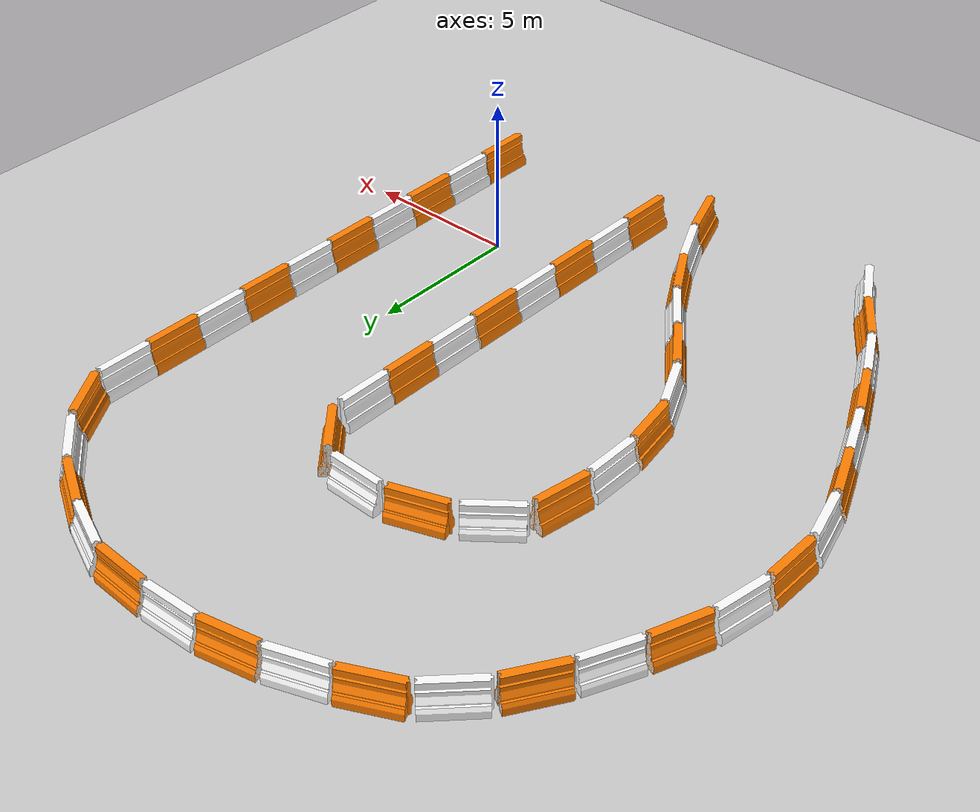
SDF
<sdf version="1.4">
 <world name="default">
  <model name="ground_plane">
   <static>1</static>
   <link name="link">
    <collision name="collision">
     <geometry><plane><normal>0 0 1</normal><size>100 100</size></plane></geometry>
     <surface><friction><ode><mu>100</mu><mu2>50</mu2></ode></friction></surface>
    </collision>
    <visual name="visual">
     <cast_shadows>0</cast_shadows>
     <geometry><plane><normal>0 0 1</normal><size>100 100</size></plane></geometry>
     <material>
      <script><uri>file://media/materials/scripts/gazebo.material</uri><name>Gazebo/Grey</name></script>
     </material>
    </visual>
    <velocity_decay><linear>0</linear><angular>0</angular></velocity_decay>
   </link>
  </model>
  <model name="drc_practice_organge_jersey_barrier">
   <static>1</static>
   <link name="link">
    <visual name="visual">
     <geometry>
      <mesh><uri>model://drc_practice_orange_jersey_barrier/meshes/jersey_barrier.dae</uri></mesh>
     </geometry>
    </visual>
    <collision name="collision">
     <geometry>
      <mesh><uri>model://drc_practice_orange_jersey_barrier/meshes/jersey_barrier.dae</uri></mesh>
     </geometry>
    </collision>
    <velocity_decay><linear>0</linear><angular>0</angular></velocity_decay>
   </link>
   <pose>-3 0 0 0 -0 0</pose>
  </model>
  <model name="drc_practice_white_jersey_barrier">
   <static>1</static>
   <link name="link">
    <visual name="visual">
     <geometry>
      <mesh><uri>model://drc_practice_white_jersey_barrier/meshes/jersey_barrier.dae</uri></mesh>
     </geometry>
    </visual>
    <collision name="collision">
     <geometry>
      <mesh><uri>model://drc_practice_white_jersey_barrier/meshes/jersey_barrier.dae</uri></mesh>
     </geometry>
    </collision>
    <velocity_decay><linear>0</linear><angular>0</angular></velocity_decay>
   </link>
   <pose>-3.00636 -1.77879 0 0 -0 0</pose>
  </model>
  <model name="drc_practice_organge_jersey_barrier_0">
   <static>1</static>
   <link name="link">
    <visual name="visual">
     <geometry>
      <mesh><uri>model://drc_practice_orange_jersey_barrier/meshes/jersey_barrier.dae</uri></mesh>
     </geometry>
    </visual>
    <collision name="collision">
     <geometry>
      <mesh><uri>model://drc_practice_orange_jersey_barrier/meshes/jersey_barrier.dae</uri></mesh>
     </geometry>
    </collision>
    <velocity_decay><linear>0</linear><angular>0</angular></velocity_decay>
   </link>
   <pose>3 0 0 0 -0 0</pose>
  </model>
  <model name="drc_practice_white_jersey_barrier_0">
   <static>1</static>
   <link name="link">
    <visual name="visual">
     <geometry>
      <mesh><uri>model://drc_practice_white_jersey_barrier/meshes/jersey_barrier.dae</uri></mesh>
     </geometry>
    </visual>
    <collision name="collision">
     <geometry>
      <mesh><uri>model://drc_practice_white_jersey_barrier/meshes/jersey_barrier.dae</uri></mesh>
     </geometry>
    </collision>
    <velocity_decay><linear>0</linear><angular>0</angular></velocity_decay>
   </link>
   <pose>2.99298 -1.79417 0 0 -0 0</pose>
  </model>
  <model name="drc_practice_organge_jersey_barrier_1">
   <static>1</static>
   <link name="link">
    <visual name="visual">
     <geometry>
      <mesh><uri>model://drc_practice_orange_jersey_barrier/meshes/jersey_barrier.dae</uri></mesh>
     </geometry>
    </visual>
    <collision name="collision">
     <geometry>
      <mesh><uri>model://drc_practice_orange_jersey_barrier/meshes/jersey_barrier.dae</uri></mesh>
     </geometry>
    </collision>
    <velocity_decay><linear>0</linear><angular>0</angular></velocity_decay>
   </link>
   <pose>3 -3.58116 0 0 -0 0</pose>
  </model>
  <model name="drc_practice_white_jersey_barrier_1">
   <static>1</static>
   <link name="link">
    <visual name="visual">
     <geometry>
      <mesh><uri>model://drc_practice_white_jersey_barrier/meshes/jersey_barrier.dae</uri></mesh>
     </geometry>
    </visual>
    <collision name="collision">
     <geometry>
      <mesh><uri>model://drc_practice_white_jersey_barrier/meshes/jersey_barrier.dae</uri></mesh>
     </geometry>
    </collision>
    <velocity_decay><linear>0</linear><angular>0</angular></velocity_decay>
   </link>
   <pose>2.99532 1.76518 0 0 -0 0</pose>
  </model>
  <model name="drc_practice_organge_jersey_barrier_2">
   <static>1</static>
   <link name="link">
    <visual name="visual">
     <geometry>
      <mesh><uri>model://drc_practice_orange_jersey_barrier/meshes/jersey_barrier.dae</uri></mesh>
     </geometry>
    </visual>
    <collision name="collision">
     <geometry>
      <mesh><uri>model://drc_practice_orange_jersey_barrier/meshes/jersey_barrier.dae</uri></mesh>
     </geometry>
    </collision>
    <velocity_decay><linear>0</linear><angular>0</angular></velocity_decay>
   </link>
   <pose>3.00321 3.55017 0 0 -0 0</pose>
  </model>
  <model name="drc_practice_white_jersey_barrier_2">
   <static>1</static>
   <link name="link">
    <visual name="visual">
     <geometry>
      <mesh><uri>model://drc_practice_white_jersey_barrier/meshes/jersey_barrier.dae</uri></mesh>
     </geometry>
    </visual>
    <collision name="collision">
     <geometry>
      <mesh><uri>model://drc_practice_white_jersey_barrier/meshes/jersey_barrier.dae</uri></mesh>
     </geometry>
    </collision>
    <velocity_decay><linear>0</linear><angular>0</angular></velocity_decay>
   </link>
   <pose>3.00517 5.32833 0 0 -0 0</pose>
  </model>
  <model name="drc_practice_organge_jersey_barrier_3">
   <static>1</static>
   <link name="link">
    <visual name="visual">
     <geometry>
      <mesh><uri>model://drc_practice_orange_jersey_barrier/meshes/jersey_barrier.dae</uri></mesh>
     </geometry>
    </visual>
    <collision name="collision">
     <geometry>
      <mesh><uri>model://drc_practice_orange_jersey_barrier/meshes/jersey_barrier.dae</uri></mesh>
     </geometry>
    </collision>
    <velocity_decay><linear>0</linear><angular>0</angular></velocity_decay>
   </link>
   <pose>3.01972 7.11826 0 0 -0 0</pose>
  </model>
  <model name="drc_practice_white_jersey_barrier_3">
   <static>1</static>
   <link name="link">
    <visual name="visual">
     <geometry>
      <mesh><uri>model://drc_practice_white_jersey_barrier/meshes/jersey_barrier.dae</uri></mesh>
     </geometry>
    </visual>
    <collision name="collision">
     <geometry>
      <mesh><uri>model://drc_practice_white_jersey_barrier/meshes/jersey_barrier.dae</uri></mesh>
     </geometry>
    </collision>
    <velocity_decay><linear>0</linear><angular>0</angular></velocity_decay>
   </link>
   <pose>3.03592 8.91113 0 0 -0 0</pose>
  </model>
  <model name="drc_practice_organge_jersey_barrier_4">
   <static>1</static>
   <link name="link">
    <visual name="visual">
     <geometry>
      <mesh><uri>model://drc_practice_orange_jersey_barrier/meshes/jersey_barrier.dae</uri></mesh>
     </geometry>
    </visual>
    <collision name="collision">
     <geometry>
      <mesh><uri>model://drc_practice_orange_jersey_barrier/meshes/jersey_barrier.dae</uri></mesh>
     </geometry>
    </collision>
    <velocity_decay><linear>0</linear><angular>0</angular></velocity_decay>
   </link>
   <pose>3.04313 10.6845 0 0 -0 0</pose>
  </model>
  <model name="drc_practice_white_jersey_barrier_4">
   <static>1</static>
   <link name="link">
    <visual name="visual">
     <geometry>
      <mesh><uri>model://drc_practice_white_jersey_barrier/meshes/jersey_barrier.dae</uri></mesh>
     </geometry>
    </visual>
    <collision name="collision">
     <geometry>
      <mesh><uri>model://drc_practice_white_jersey_barrier/meshes/jersey_barrier.dae</uri></mesh>
     </geometry>
    </collision>
    <velocity_decay><linear>0</linear><angular>0</angular></velocity_decay>
   </link>
   <pose>3.05799 12.4512 0 0 -0 0</pose>
  </model>
  <model name="drc_practice_organge_jersey_barrier_5">
   <static>1</static>
   <link name="link">
    <visual name="visual">
     <geometry>
      <mesh><uri>model://drc_practice_orange_jersey_barrier/meshes/jersey_barrier.dae</uri></mesh>
     </geometry>
    </visual>
    <collision name="collision">
     <geometry>
      <mesh><uri>model://drc_practice_orange_jersey_barrier/meshes/jersey_barrier.dae</uri></mesh>
     </geometry>
    </collision>
    <velocity_decay><linear>0</linear><angular>0</angular></velocity_decay>
   </link>
   <pose>2.56633 14.2109 0 0 -0 0.558037</pose>
  </model>
  <model name="drc_practice_white_jersey_barrier_5">
   <static>1</static>
   <link name="link">
    <visual name="visual">
     <geometry>
      <mesh><uri>model://drc_practice_white_jersey_barrier/meshes/jersey_barrier.dae</uri></mesh>
     </geometry>
    </visual>
    <collision name="collision">
     <geometry>
      <mesh><uri>model://drc_practice_white_jersey_barrier/meshes/jersey_barrier.dae</uri></mesh>
     </geometry>
    </collision>
    <velocity_decay><linear>0</linear><angular>0</angular></velocity_decay>
   </link>
   <pose>1.35576 15.6634 0 0 -0 0.849517</pose>
  </model>
  <model name="drc_practice_organge_jersey_barrier_6">
   <static>1</static>
   <link name="link">
    <visual name="visual">
     <geometry>
      <mesh><uri>model://drc_practice_orange_jersey_barrier/meshes/jersey_barrier.dae</uri></mesh>
     </geometry>
    </visual>
    <collision name="collision">
     <geometry>
      <mesh><uri>model://drc_practice_orange_jersey_barrier/meshes/jersey_barrier.dae</uri></mesh>
     </geometry>
    </collision>
    <velocity_decay><linear>0</linear><angular>0</angular></velocity_decay>
   </link>
   <pose>-2.9865 3.54993 0 0 -0 0</pose>
  </model>
  <model name="drc_practice_white_jersey_barrier_6">
   <static>1</static>
   <link name="link">
    <visual name="visual">
     <geometry>
      <mesh><uri>model://drc_practice_white_jersey_barrier/meshes/jersey_barrier.dae</uri></mesh>
     </geometry>
    </visual>
    <collision name="collision">
     <geometry>
      <mesh><uri>model://drc_practice_white_jersey_barrier/meshes/jersey_barrier.dae</uri></mesh>
     </geometry>
    </collision>
    <velocity_decay><linear>0</linear><angular>0</angular></velocity_decay>
   </link>
   <pose>-2.99585 1.76821 0 0 -0 0</pose>
  </model>
  <model name="drc_practice_white_jersey_barrier_7">
   <static>1</static>
   <link name="link">
    <visual name="visual">
     <geometry>
      <mesh><uri>model://drc_practice_white_jersey_barrier/meshes/jersey_barrier.dae</uri></mesh>
     </geometry>
    </visual>
    <collision name="collision">
     <geometry>
      <mesh><uri>model://drc_practice_white_jersey_barrier/meshes/jersey_barrier.dae</uri></mesh>
     </geometry>
    </collision>
    <velocity_decay><linear>0</linear><angular>0</angular></velocity_decay>
   </link>
   <pose>-2.9686 5.35953 0 0 -0 0</pose>
  </model>
  <model name="drc_practice_organge_jersey_barrier_7">
   <static>1</static>
   <link name="link">
    <visual name="visual">
     <geometry>
      <mesh><uri>model://drc_practice_orange_jersey_barrier/meshes/jersey_barrier.dae</uri></mesh>
     </geometry>
    </visual>
    <collision name="collision">
     <geometry>
      <mesh><uri>model://drc_practice_orange_jersey_barrier/meshes/jersey_barrier.dae</uri></mesh>
     </geometry>
    </collision>
    <velocity_decay><linear>0</linear><angular>0</angular></velocity_decay>
   </link>
   <pose>-2.96717 7.14327 0 0 -0 0</pose>
  </model>
  <model name="drc_practice_white_jersey_barrier_8">
   <static>1</static>
   <link name="link">
    <visual name="visual">
     <geometry>
      <mesh><uri>model://drc_practice_white_jersey_barrier/meshes/jersey_barrier.dae</uri></mesh>
     </geometry>
    </visual>
    <collision name="collision">
     <geometry>
      <mesh><uri>model://drc_practice_white_jersey_barrier/meshes/jersey_barrier.dae</uri></mesh>
     </geometry>
    </collision>
    <velocity_decay><linear>0</linear><angular>0</angular></velocity_decay>
   </link>
   <pose>-2.94955 8.92506 0 0 -0 0</pose>
  </model>
  <model name="drc_practice_organge_jersey_barrier_8">
   <static>1</static>
   <link name="link">
    <visual name="visual">
     <geometry>
      <mesh><uri>model://drc_practice_orange_jersey_barrier/meshes/jersey_barrier.dae</uri></mesh>
     </geometry>
    </visual>
    <collision name="collision">
     <geometry>
      <mesh><uri>model://drc_practice_orange_jersey_barrier/meshes/jersey_barrier.dae</uri></mesh>
     </geometry>
    </collision>
    <velocity_decay><linear>0</linear><angular>0</angular></velocity_decay>
   </link>
   <pose>-3.53823 10.7657 0 0 -0 0.724496</pose>
  </model>
  <model name="drc_practice_white_jersey_barrier_9">
   <static>1</static>
   <link name="link">
    <visual name="visual">
     <geometry>
      <mesh><uri>model://drc_practice_white_jersey_barrier/meshes/jersey_barrier.dae</uri></mesh>
     </geometry>
    </visual>
    <collision name="collision">
     <geometry>
      <mesh><uri>model://drc_practice_white_jersey_barrier/meshes/jersey_barrier.dae</uri></mesh>
     </geometry>
    </collision>
    <velocity_decay><linear>0</linear><angular>0</angular></velocity_decay>
   </link>
   <pose>-5.30266 11.5274 0 0 -0 1.55462</pose>
  </model>
  <model name="drc_practice_organge_jersey_barrier_10">
   <static>1</static>
   <link name="link">
    <visual name="visual">
     <geometry>
      <mesh><uri>model://drc_practice_orange_jersey_barrier/meshes/jersey_barrier.dae</uri></mesh>
     </geometry>
    </visual>
    <collision name="collision">
     <geometry>
      <mesh><uri>model://drc_practice_orange_jersey_barrier/meshes/jersey_barrier.dae</uri></mesh>
     </geometry>
    </collision>
    <velocity_decay><linear>0</linear><angular>0</angular></velocity_decay>
   </link>
   <pose>-7.19828 11.2212 0 0 0 -1.22426</pose>
  </model>
  <model name="drc_practice_white_jersey_barrier_10">
   <static>1</static>
   <link name="link">
    <visual name="visual">
     <geometry>
      <mesh><uri>model://drc_practice_white_jersey_barrier/meshes/jersey_barrier.dae</uri></mesh>
     </geometry>
    </visual>
    <collision name="collision">
     <geometry>
      <mesh><uri>model://drc_practice_white_jersey_barrier/meshes/jersey_barrier.dae</uri></mesh>
     </geometry>
    </collision>
    <velocity_decay><linear>0</linear><angular>0</angular></velocity_decay>
   </link>
   <pose>-8.88681 10.2156 0 0 0 -0.883534</pose>
  </model>
  <model name="drc_practice_organge_jersey_barrier_11">
   <static>1</static>
   <link name="link">
    <visual name="visual">
     <geometry>
      <mesh><uri>model://drc_practice_orange_jersey_barrier/meshes/jersey_barrier.dae</uri></mesh>
     </geometry>
    </visual>
    <collision name="collision">
     <geometry>
      <mesh><uri>model://drc_practice_orange_jersey_barrier/meshes/jersey_barrier.dae</uri></mesh>
     </geometry>
    </collision>
    <velocity_decay><linear>0</linear><angular>0</angular></velocity_decay>
   </link>
   <pose>-0.150061 16.7325 0 0 -0 1.05957</pose>
  </model>
  <model name="drc_practice_white_jersey_barrier_11">
   <static>1</static>
   <link name="link">
    <visual name="visual">
     <geometry>
      <mesh><uri>model://drc_practice_white_jersey_barrier/meshes/jersey_barrier.dae</uri></mesh>
     </geometry>
    </visual>
    <collision name="collision">
     <geometry>
      <mesh><uri>model://drc_practice_white_jersey_barrier/meshes/jersey_barrier.dae</uri></mesh>
     </geometry>
    </collision>
    <velocity_decay><linear>0</linear><angular>0</angular></velocity_decay>
   </link>
   <pose>-1.7497 17.4986 0 0 -0 1.1857</pose>
  </model>
  <model name="drc_practice_organge_jersey_barrier_12">
   <static>1</static>
   <link name="link">
    <visual name="visual">
     <geometry>
      <mesh><uri>model://drc_practice_orange_jersey_barrier/meshes/jersey_barrier.dae</uri></mesh>
     </geometry>
    </visual>
    <collision name="collision">
     <geometry>
      <mesh><uri>model://drc_practice_orange_jersey_barrier/meshes/jersey_barrier.dae</uri></mesh>
     </geometry>
    </collision>
    <velocity_decay><linear>0</linear><angular>0</angular></velocity_decay>
   </link>
   <pose>-3.56124 17.8846 0 0 -0 1.52563</pose>
  </model>
  <model name="drc_practice_organge_jersey_barrier_13">
   <static>1</static>
   <link name="link">
    <visual name="visual">
     <geometry>
      <mesh><uri>model://drc_practice_orange_jersey_barrier/meshes/jersey_barrier.dae</uri></mesh>
     </geometry>
    </visual>
    <collision name="collision">
     <geometry>
      <mesh><uri>model://drc_practice_orange_jersey_barrier/meshes/jersey_barrier.dae</uri></mesh>
     </geometry>
    </collision>
    <velocity_decay><linear>0</linear><angular>0</angular></velocity_decay>
   </link>
   <pose>-9.77189 8.5621 0 0 0 -0.162031</pose>
  </model>
  <model name="drc_practice_white_jersey_barrier_12">
   <static>1</static>
   <link name="link">
    <visual name="visual">
     <geometry>
      <mesh><uri>model://drc_practice_white_jersey_barrier/meshes/jersey_barrier.dae</uri></mesh>
     </geometry>
    </visual>
    <collision name="collision">
     <geometry>
      <mesh><uri>model://drc_practice_white_jersey_barrier/meshes/jersey_barrier.dae</uri></mesh>
     </geometry>
    </collision>
    <velocity_decay><linear>0</linear><angular>0</angular></velocity_decay>
   </link>
   <pose>-5.42488 17.8879 0 0 -0 1.61776</pose>
  </model>
  <model name="drc_practice_white_jersey_barrier_13">
   <static>1</static>
   <link name="link">
    <visual name="visual">
     <geometry>
      <mesh><uri>model://drc_practice_white_jersey_barrier/meshes/jersey_barrier.dae</uri></mesh>
     </geometry>
    </visual>
    <collision name="collision">
     <geometry>
      <mesh><uri>model://drc_practice_white_jersey_barrier/meshes/jersey_barrier.dae</uri></mesh>
     </geometry>
    </collision>
    <velocity_decay><linear>0</linear><angular>0</angular></velocity_decay>
   </link>
   <pose>-9.00789 17.1445 0 0 -0 1.92368</pose>
  </model>
  <model name="drc_practice_white_jersey_barrier_14">
   <static>1</static>
   <link name="link">
    <visual name="visual">
     <geometry>
      <mesh><uri>model://drc_practice_white_jersey_barrier/meshes/jersey_barrier.dae</uri></mesh>
     </geometry>
    </visual>
    <collision name="collision">
     <geometry>
      <mesh><uri>model://drc_practice_white_jersey_barrier/meshes/jersey_barrier.dae</uri></mesh>
     </geometry>
    </collision>
    <velocity_decay><linear>0</linear><angular>0</angular></velocity_decay>
   </link>
   <pose>-9.90206 6.68573 0 0 -0 0</pose>
  </model>
  <model name="drc_practice_organge_jersey_barrier_14">
   <static>1</static>
   <link name="link">
    <visual name="visual">
     <geometry>
      <mesh><uri>model://drc_practice_orange_jersey_barrier/meshes/jersey_barrier.dae</uri></mesh>
     </geometry>
    </visual>
    <collision name="collision">
     <geometry>
      <mesh><uri>model://drc_practice_orange_jersey_barrier/meshes/jersey_barrier.dae</uri></mesh>
     </geometry>
    </collision>
    <velocity_decay><linear>0</linear><angular>0</angular></velocity_decay>
   </link>
   <pose>-7.24295 17.6588 0 0 -0 1.78639</pose>
  </model>
  <model name="drc_practice_organge_jersey_barrier_15">
   <static>1</static>
   <link name="link">
    <visual name="visual">
     <geometry>
      <mesh><uri>model://drc_practice_orange_jersey_barrier/meshes/jersey_barrier.dae</uri></mesh>
     </geometry>
    </visual>
    <collision name="collision">
     <geometry>
      <mesh><uri>model://drc_practice_orange_jersey_barrier/meshes/jersey_barrier.dae</uri></mesh>
     </geometry>
    </collision>
    <velocity_decay><linear>0</linear><angular>0</angular></velocity_decay>
   </link>
   <pose>-10.6958 16.4453 0 0 0 -1.11341</pose>
  </model>
  <model name="drc_practice_white_jersey_barrier_15">
   <static>1</static>
   <link name="link">
    <visual name="visual">
     <geometry>
      <mesh><uri>model://drc_practice_white_jersey_barrier/meshes/jersey_barrier.dae</uri></mesh>
     </geometry>
    </visual>
    <collision name="collision">
     <geometry>
      <mesh><uri>model://drc_practice_white_jersey_barrier/meshes/jersey_barrier.dae</uri></mesh>
     </geometry>
    </collision>
    <velocity_decay><linear>0</linear><angular>0</angular></velocity_decay>
   </link>
   <pose>-9.17738 3.13094 0 0 -0 0.447263</pose>
  </model>
  <model name="drc_practice_white_jersey_barrier_16">
   <static>1</static>
   <link name="link">
    <visual name="visual">
     <geometry>
      <mesh><uri>model://drc_practice_white_jersey_barrier/meshes/jersey_barrier.dae</uri></mesh>
     </geometry>
    </visual>
    <collision name="collision">
     <geometry>
      <mesh><uri>model://drc_practice_white_jersey_barrier/meshes/jersey_barrier.dae</uri></mesh>
     </geometry>
    </collision>
    <velocity_decay><linear>0</linear><angular>0</angular></velocity_decay>
   </link>
   <pose>-15.389 4.92256 0 0 -0 0.26839</pose>
  </model>
  <model name="drc_practice_white_jersey_barrier_17">
   <static>1</static>
   <link name="link">
    <visual name="visual">
     <geometry>
      <mesh><uri>model://drc_practice_white_jersey_barrier/meshes/jersey_barrier.dae</uri></mesh>
     </geometry>
    </visual>
    <collision name="collision">
     <geometry>
      <mesh><uri>model://drc_practice_white_jersey_barrier/meshes/jersey_barrier.dae</uri></mesh>
     </geometry>
    </collision>
    <velocity_decay><linear>0</linear><angular>0</angular></velocity_decay>
   </link>
   <pose>-14.2467 12.1682 0 0 0 -0.424898</pose>
  </model>
  <model name="drc_practice_white_jersey_barrier_18">
   <static>1</static>
   <link name="link">
    <visual name="visual">
     <geometry>
      <mesh><uri>model://drc_practice_white_jersey_barrier/meshes/jersey_barrier.dae</uri></mesh>
     </geometry>
    </visual>
    <collision name="collision">
     <geometry>
      <mesh><uri>model://drc_practice_white_jersey_barrier/meshes/jersey_barrier.dae</uri></mesh>
     </geometry>
    </collision>
    <velocity_decay><linear>0</linear><angular>0</angular></velocity_decay>
   </link>
   <pose>-15.4727 8.66844 0 0 0 -0.167254</pose>
  </model>
  <model name="drc_practice_organge_jersey_barrier_16">
   <static>1</static>
   <link name="link">
    <visual name="visual">
     <geometry>
      <mesh><uri>model://drc_practice_orange_jersey_barrier/meshes/jersey_barrier.dae</uri></mesh>
     </geometry>
    </visual>
    <collision name="collision">
     <geometry>
      <mesh><uri>model://drc_practice_orange_jersey_barrier/meshes/jersey_barrier.dae</uri></mesh>
     </geometry>
    </collision>
    <velocity_decay><linear>0</linear><angular>0</angular></velocity_decay>
   </link>
   <pose>-14.7974 3.16182 0 0 -0 0.405189</pose>
  </model>
  <model name="drc_practice_organge_jersey_barrier_17">
   <static>1</static>
   <link name="link">
    <visual name="visual">
     <geometry>
      <mesh><uri>model://drc_practice_orange_jersey_barrier/meshes/jersey_barrier.dae</uri></mesh>
     </geometry>
    </visual>
    <collision name="collision">
     <geometry>
      <mesh><uri>model://drc_practice_orange_jersey_barrier/meshes/jersey_barrier.dae</uri></mesh>
     </geometry>
    </collision>
    <velocity_decay><linear>0</linear><angular>0</angular></velocity_decay>
   </link>
   <pose>-13.384 13.8176 0 0 0 -0.557025</pose>
  </model>
  <model name="drc_practice_organge_jersey_barrier_18">
   <static>1</static>
   <link name="link">
    <visual name="visual">
     <geometry>
      <mesh><uri>model://drc_practice_orange_jersey_barrier/meshes/jersey_barrier.dae</uri></mesh>
     </geometry>
    </visual>
    <collision name="collision">
     <geometry>
      <mesh><uri>model://drc_practice_orange_jersey_barrier/meshes/jersey_barrier.dae</uri></mesh>
     </geometry>
    </collision>
    <velocity_decay><linear>0</linear><angular>0</angular></velocity_decay>
   </link>
   <pose>-14.9813 10.4476 0 0 0 -0.356663</pose>
  </model>
  <model name="drc_practice_organge_jersey_barrier_19">
   <static>1</static>
   <link name="link">
    <visual name="visual">
     <geometry>
      <mesh><uri>model://drc_practice_orange_jersey_barrier/meshes/jersey_barrier.dae</uri></mesh>
     </geometry>
    </visual>
    <collision name="collision">
     <geometry>
      <mesh><uri>model://drc_practice_orange_jersey_barrier/meshes/jersey_barrier.dae</uri></mesh>
     </geometry>
    </collision>
    <velocity_decay><linear>0</linear><angular>0</angular></velocity_decay>
   </link>
   <pose>-9.76741 4.85575 0 0 -0 0.167306</pose>
  </model>
  <model name="drc_practice_organge_jersey_barrier_20">
   <static>1</static>
   <link name="link">
    <visual name="visual">
     <geometry>
      <mesh><uri>model://drc_practice_orange_jersey_barrier/meshes/jersey_barrier.dae</uri></mesh>
     </geometry>
    </visual>
    <collision name="collision">
     <geometry>
      <mesh><uri>model://drc_practice_orange_jersey_barrier/meshes/jersey_barrier.dae</uri></mesh>
     </geometry>
    </collision>
    <velocity_decay><linear>0</linear><angular>0</angular></velocity_decay>
   </link>
   <pose>-8.19934 1.53988 0 0 -0 0.644843</pose>
  </model>
  <model name="drc_practice_organge_jersey_barrier_21">
   <static>1</static>
   <link name="link">
    <visual name="visual">
     <geometry>
      <mesh><uri>model://drc_practice_orange_jersey_barrier/meshes/jersey_barrier.dae</uri></mesh>
     </geometry>
    </visual>
    <collision name="collision">
     <geometry>
      <mesh><uri>model://drc_practice_orange_jersey_barrier/meshes/jersey_barrier.dae</uri></mesh>
     </geometry>
    </collision>
    <velocity_decay><linear>0</linear><angular>0</angular></velocity_decay>
   </link>
   <pose>-15.6408 6.80396 0 0 -0 0</pose>
  </model>
  <model name="drc_practice_white_jersey_barrier_19">
   <static>1</static>
   <link name="link">
    <visual name="visual">
     <geometry>
      <mesh><uri>model://drc_practice_white_jersey_barrier/meshes/jersey_barrier.dae</uri></mesh>
     </geometry>
    </visual>
    <collision name="collision">
     <geometry>
      <mesh><uri>model://drc_practice_white_jersey_barrier/meshes/jersey_barrier.dae</uri></mesh>
     </geometry>
    </collision>
    <velocity_decay><linear>0</linear><angular>0</angular></velocity_decay>
   </link>
   <pose>-12.2021 15.3251 0 0 0 -0.778487</pose>
  </model>
  <model name="drc_practice_white_jersey_barrier_20">
   <static>1</static>
   <link name="link">
    <visual name="visual">
     <geometry>
      <mesh><uri>model://drc_practice_white_jersey_barrier/meshes/jersey_barrier.dae</uri></mesh>
     </geometry>
    </visual>
    <collision name="collision">
     <geometry>
      <mesh><uri>model://drc_practice_white_jersey_barrier/meshes/jersey_barrier.dae</uri></mesh>
     </geometry>
    </collision>
    <velocity_decay><linear>0</linear><angular>0</angular></velocity_decay>
   </link>
   <pose>-7.06868 0.068997 0 0 -0 0.654488</pose>
  </model>
  <model name="drc_practice_white_jersey_barrier_21">
   <static>1</static>
   <link name="link">
    <visual name="visual">
     <geometry>
      <mesh><uri>model://drc_practice_white_jersey_barrier/meshes/jersey_barrier.dae</uri></mesh>
     </geometry>
    </visual>
    <collision name="collision">
     <geometry>
      <mesh><uri>model://drc_practice_white_jersey_barrier/meshes/jersey_barrier.dae</uri></mesh>
     </geometry>
    </collision>
    <velocity_decay><linear>0</linear><angular>0</angular></velocity_decay>
   </link>
   <pose>-14.0875 1.51116 0 0 -0 0.41494</pose>
  </model>
  <model name="drc_practice_white_jersey_barrier_22">
   <static>1</static>
   <link name="link">
    <visual name="visual">
     <geometry>
      <mesh><uri>model://drc_practice_white_jersey_barrier/meshes/jersey_barrier.dae</uri></mesh>
     </geometry>
    </visual>
    <collision name="collision">
     <geometry>
      <mesh><uri>model://drc_practice_white_jersey_barrier/meshes/jersey_barrier.dae</uri></mesh>
     </geometry>
    </collision>
    <velocity_decay><linear>0</linear><angular>0</angular></velocity_decay>
   </link>
   <pose>-12.5122 -1.72646 0 0 -0 0.496376</pose>
  </model>
  <model name="drc_practice_white_jersey_barrier_23">
   <static>1</static>
   <link name="link">
    <visual name="visual">
     <geometry>
      <mesh><uri>model://drc_practice_white_jersey_barrier/meshes/jersey_barrier.dae</uri></mesh>
     </geometry>
    </visual>
    <collision name="collision">
     <geometry>
      <mesh><uri>model://drc_practice_white_jersey_barrier/meshes/jersey_barrier.dae</uri></mesh>
     </geometry>
    </collision>
    <velocity_decay><linear>0</linear><angular>0</angular></velocity_decay>
   </link>
   <pose>-5.21001 -3.01217 0 0 -0 0.44886</pose>
  </model>
  <model name="drc_practice_organge_jersey_barrier_22">
   <static>1</static>
   <link name="link">
    <visual name="visual">
     <geometry>
      <mesh><uri>model://drc_practice_orange_jersey_barrier/meshes/jersey_barrier.dae</uri></mesh>
     </geometry>
    </visual>
    <collision name="collision">
     <geometry>
      <mesh><uri>model://drc_practice_orange_jersey_barrier/meshes/jersey_barrier.dae</uri></mesh>
     </geometry>
    </collision>
    <velocity_decay><linear>0</linear><angular>0</angular></velocity_decay>
   </link>
   <pose>-13.3339 -0.115933 0 0 -0 0.46352</pose>
  </model>
  <model name="drc_practice_organge_jersey_barrier_23">
   <static>1</static>
   <link name="link">
    <visual name="visual">
     <geometry>
      <mesh><uri>model://drc_practice_orange_jersey_barrier/meshes/jersey_barrier.dae</uri></mesh>
     </geometry>
    </visual>
    <collision name="collision">
     <geometry>
      <mesh><uri>model://drc_practice_orange_jersey_barrier/meshes/jersey_barrier.dae</uri></mesh>
     </geometry>
    </collision>
    <velocity_decay><linear>0</linear><angular>0</angular></velocity_decay>
   </link>
   <pose>-6.04979 -1.45886 0 0 -0 0.536755</pose>
  </model>
  <model name="drc_practice_white_jersey_barrier_25">
   <static>1</static>
   <link name="link">
    <visual name="visual">
     <geometry>
      <mesh><uri>model://drc_practice_white_jersey_barrier/meshes/jersey_barrier.dae</uri></mesh>
     </geometry>
    </visual>
    <collision name="collision">
     <geometry>
      <mesh><uri>model://drc_practice_white_jersey_barrier/meshes/jersey_barrier.dae</uri></mesh>
     </geometry>
    </collision>
    <velocity_decay><linear>0</linear><angular>0</angular></velocity_decay>
   </link>
   <pose>-10.5755 -4.74366 0 0 -0 0.538067</pose>
  </model>
  <model name="drc_practice_organge_jersey_barrier_24">
   <static>1</static>
   <link name="link">
    <visual name="visual">
     <geometry>
      <mesh><uri>model://drc_practice_orange_jersey_barrier/meshes/jersey_barrier.dae</uri></mesh>
     </geometry>
    </visual>
    <collision name="collision">
     <geometry>
      <mesh><uri>model://drc_practice_orange_jersey_barrier/meshes/jersey_barrier.dae</uri></mesh>
     </geometry>
    </collision>
    <velocity_decay><linear>0</linear><angular>0</angular></velocity_decay>
   </link>
   <pose>-3.0218 -3.56442 0 0 -0 0</pose>
  </model>
  <model name="drc_practice_organge_jersey_barrier_28">
   <static>1</static>
   <link name="link">
    <visual name="visual">
     <geometry>
      <mesh><uri>model://drc_practice_orange_jersey_barrier/meshes/jersey_barrier.dae</uri></mesh>
     </geometry>
    </visual>
    <collision name="collision">
     <geometry>
      <mesh><uri>model://drc_practice_orange_jersey_barrier/meshes/jersey_barrier.dae</uri></mesh>
     </geometry>
    </collision>
    <velocity_decay><linear>0</linear><angular>0</angular></velocity_decay>
   </link>
   <pose>-4.52995 -4.67648 0 0 -0 0.352837</pose>
  </model>
  <model name="drc_practice_organge_jersey_barrier_29">
   <static>1</static>
   <link name="link">
    <visual name="visual">
     <geometry>
      <mesh><uri>model://drc_practice_orange_jersey_barrier/meshes/jersey_barrier.dae</uri></mesh>
     </geometry>
    </visual>
    <collision name="collision">
     <geometry>
      <mesh><uri>model://drc_practice_orange_jersey_barrier/meshes/jersey_barrier.dae</uri></mesh>
     </geometry>
    </collision>
    <velocity_decay><linear>0</linear><angular>0</angular></velocity_decay>
   </link>
   <pose>-11.5586 -3.26046 0 0 -0 0.623899</pose>
  </model>
 </world>
</sdf>
